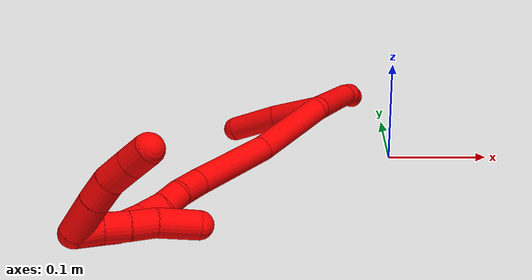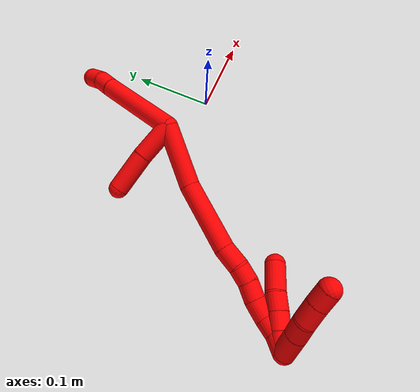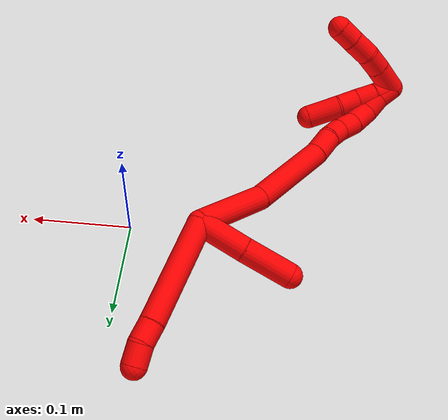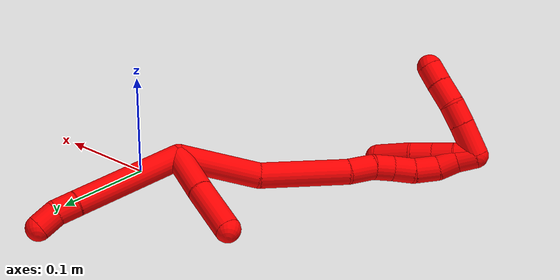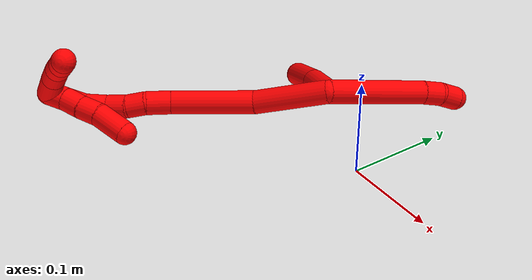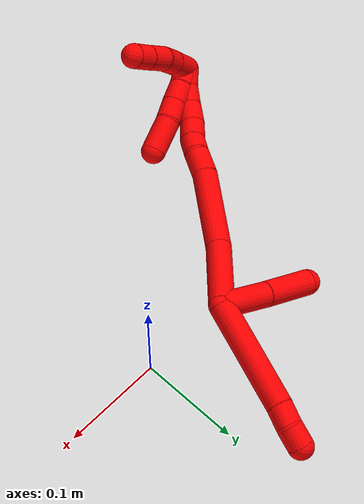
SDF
<sdf version="1.7">
 <world name="default">
  <model name="2">
   <static>0</static>
   <link name="2">
    <collision name="collision-cylinder-e_1_2_8">
     <pose>-0.000325 0.046151 0.028275 -1.02111 -0.006 0.003361</pose>
     <geometry><cylinder><radius>0.0125</radius><length>0.108249</length></cylinder></geometry>
     <surface>
      <friction><ode><mu>1.16</mu><mu2>1.16</mu2><slip1>0</slip1><slip2>0</slip2></ode></friction>
      <contact><ode><kp>1e+06</kp><kd>1</kd><max_vel>0</max_vel><min_depth>0.001</min_depth></ode></contact>
     </surface>
    </collision>
    <visual name="visual-cylinder-e_1_2_8">
     <pose>-0.000325 0.046151 0.028275 -1.02111 -0.006 0.003361</pose>
     <geometry><cylinder><radius>0.0125</radius><length>0.108249</length></cylinder></geometry>
     <material><ambient>1 0 0 1</ambient></material>
    </visual>
    <collision name="collision-cylinder-e_2_8_9">
     <pose>-0.001404 0.101417 0.061546 -1.06952 -0.072499 0.042956</pose>
     <geometry><cylinder><radius>0.0125</radius><length>0.020844</length></cylinder></geometry>
     <surface>
      <friction><ode><mu>1.16</mu><mu2>1.16</mu2><slip1>0</slip1><slip2>0</slip2></ode></friction>
      <contact><ode><kp>1e+06</kp><kd>1</kd><max_vel>0</max_vel><min_depth>0.001</min_depth></ode></contact>
     </surface>
    </collision>
    <visual name="visual-cylinder-e_2_8_9">
     <pose>-0.001404 0.101417 0.061546 -1.06952 -0.072499 0.042956</pose>
     <geometry><cylinder><radius>0.0125</radius><length>0.020844</length></cylinder></geometry>
     <material><ambient>1 0 0 1</ambient></material>
    </visual>
    <collision name="collision-cylinder-e_3_9_6">
     <pose>-0.004724 0.118118 0.073261 -0.8458 -0.247849 0.112003</pose>
     <geometry><cylinder><radius>0.0125</radius><length>0.020906</length></cylinder></geometry>
     <surface>
      <friction><ode><mu>1.16</mu><mu2>1.16</mu2><slip1>0</slip1><slip2>0</slip2></ode></friction>
      <contact><ode><kp>1e+06</kp><kd>1</kd><max_vel>0</max_vel><min_depth>0.001</min_depth></ode></contact>
     </surface>
    </collision>
    <visual name="visual-cylinder-e_3_9_6">
     <pose>-0.004724 0.118118 0.073261 -0.8458 -0.247849 0.112003</pose>
     <geometry><cylinder><radius>0.0125</radius><length>0.020906</length></cylinder></geometry>
     <material><ambient>1 0 0 1</ambient></material>
    </visual>
    <collision name="collision-cylinder-e_1_2_10">
     <pose>0.000898 -0.010677 0.022141 0.449307 0.036518 0.008346</pose>
     <geometry><cylinder><radius>0.0125</radius><length>0.049195</length></cylinder></geometry>
     <surface>
      <friction><ode><mu>1.16</mu><mu2>1.16</mu2><slip1>0</slip1><slip2>0</slip2></ode></friction>
      <contact><ode><kp>1e+06</kp><kd>1</kd><max_vel>0</max_vel><min_depth>0.001</min_depth></ode></contact>
     </surface>
    </collision>
    <visual name="visual-cylinder-e_1_2_10">
     <pose>0.000898 -0.010677 0.022141 0.449307 0.036518 0.008346</pose>
     <geometry><cylinder><radius>0.0125</radius><length>0.049195</length></cylinder></geometry>
     <material><ambient>1 0 0 1</ambient></material>
    </visual>
    <collision name="collision-cylinder-e_2_10_5">
     <pose>0.001025 -0.033705 0.066466 0.508051 -0.030363 -0.007884</pose>
     <geometry><cylinder><radius>0.0125</radius><length>0.050805</length></cylinder></geometry>
     <surface>
      <friction><ode><mu>1.16</mu><mu2>1.16</mu2><slip1>0</slip1><slip2>0</slip2></ode></friction>
      <contact><ode><kp>1e+06</kp><kd>1</kd><max_vel>0</max_vel><min_depth>0.001</min_depth></ode></contact>
     </surface>
    </collision>
    <visual name="visual-cylinder-e_2_10_5">
     <pose>0.001025 -0.033705 0.066466 0.508051 -0.030363 -0.007884</pose>
     <geometry><cylinder><radius>0.0125</radius><length>0.050805</length></cylinder></geometry>
     <material><ambient>1 0 0 1</ambient></material>
    </visual>
    <collision name="collision-cylinder-e_1_2_11">
     <pose>-0.010078 -0.038384 0.002958 1.49387 -0.256033 -0.237243</pose>
     <geometry><cylinder><radius>0.0125</radius><length>0.07959</length></cylinder></geometry>
     <surface>
      <friction><ode><mu>1.16</mu><mu2>1.16</mu2><slip1>0</slip1><slip2>0</slip2></ode></friction>
      <contact><ode><kp>1e+06</kp><kd>1</kd><max_vel>0</max_vel><min_depth>0.001</min_depth></ode></contact>
     </surface>
    </collision>
    <visual name="visual-cylinder-e_1_2_11">
     <pose>-0.010078 -0.038384 0.002958 1.49387 -0.256033 -0.237243</pose>
     <geometry><cylinder><radius>0.0125</radius><length>0.07959</length></cylinder></geometry>
     <material><ambient>1 0 0 1</ambient></material>
    </visual>
    <collision name="collision-cylinder-e_2_11_12">
     <pose>-0.02379 -0.120197 0.000362 1.69801 -0.082824 -0.094076</pose>
     <geometry><cylinder><radius>0.0125</radius><length>0.087867</length></cylinder></geometry>
     <surface>
      <friction><ode><mu>1.16</mu><mu2>1.16</mu2><slip1>0</slip1><slip2>0</slip2></ode></friction>
      <contact><ode><kp>1e+06</kp><kd>1</kd><max_vel>0</max_vel><min_depth>0.001</min_depth></ode></contact>
     </surface>
    </collision>
    <visual name="visual-cylinder-e_2_11_12">
     <pose>-0.02379 -0.120197 0.000362 1.69801 -0.082824 -0.094076</pose>
     <geometry><cylinder><radius>0.0125</radius><length>0.087867</length></cylinder></geometry>
     <material><ambient>1 0 0 1</ambient></material>
    </visual>
    <collision name="collision-cylinder-e_3_12_13">
     <pose>-0.028466 -0.176146 -0.009202 1.88072 -0.079037 -0.108254</pose>
     <geometry><cylinder><radius>0.0125</radius><length>0.026374</length></cylinder></geometry>
     <surface>
      <friction><ode><mu>1.16</mu><mu2>1.16</mu2><slip1>0</slip1><slip2>0</slip2></ode></friction>
      <contact><ode><kp>1e+06</kp><kd>1</kd><max_vel>0</max_vel><min_depth>0.001</min_depth></ode></contact>
     </surface>
    </collision>
    <visual name="visual-cylinder-e_3_12_13">
     <pose>-0.028466 -0.176146 -0.009202 1.88072 -0.079037 -0.108254</pose>
     <geometry><cylinder><radius>0.0125</radius><length>0.026374</length></cylinder></geometry>
     <material><ambient>1 0 0 1</ambient></material>
    </visual>
    <collision name="collision-cylinder-e_4_13_14">
     <pose>-0.03204 -0.198285 -0.01451 1.70505 -0.255246 -0.291553</pose>
     <geometry><cylinder><radius>0.0125</radius><length>0.020065</length></cylinder></geometry>
     <surface>
      <friction><ode><mu>1.16</mu><mu2>1.16</mu2><slip1>0</slip1><slip2>0</slip2></ode></friction>
      <contact><ode><kp>1e+06</kp><kd>1</kd><max_vel>0</max_vel><min_depth>0.001</min_depth></ode></contact>
     </surface>
    </collision>
    <visual name="visual-cylinder-e_4_13_14">
     <pose>-0.03204 -0.198285 -0.01451 1.70505 -0.255246 -0.291553</pose>
     <geometry><cylinder><radius>0.0125</radius><length>0.020065</length></cylinder></geometry>
     <material><ambient>1 0 0 1</ambient></material>
    </visual>
    <collision name="collision-cylinder-e_5_14_15">
     <pose>-0.035959 -0.218724 -0.015374 1.53056 -0.127267 -0.122259</pose>
     <geometry><cylinder><radius>0.0125</radius><length>0.021832</length></cylinder></geometry>
     <surface>
      <friction><ode><mu>1.16</mu><mu2>1.16</mu2><slip1>0</slip1><slip2>0</slip2></ode></friction>
      <contact><ode><kp>1e+06</kp><kd>1</kd><max_vel>0</max_vel><min_depth>0.001</min_depth></ode></contact>
     </surface>
    </collision>
    <visual name="visual-cylinder-e_5_14_15">
     <pose>-0.035959 -0.218724 -0.015374 1.53056 -0.127267 -0.122259</pose>
     <geometry><cylinder><radius>0.0125</radius><length>0.021832</length></cylinder></geometry>
     <material><ambient>1 0 0 1</ambient></material>
    </visual>
    <collision name="collision-cylinder-e_6_15_16">
     <pose>-0.037527 -0.241466 -0.016911 1.73476 -0.015134 -0.017844</pose>
     <geometry><cylinder><radius>0.0125</radius><length>0.024171</length></cylinder></geometry>
     <surface>
      <friction><ode><mu>1.16</mu><mu2>1.16</mu2><slip1>0</slip1><slip2>0</slip2></ode></friction>
      <contact><ode><kp>1e+06</kp><kd>1</kd><max_vel>0</max_vel><min_depth>0.001</min_depth></ode></contact>
     </surface>
    </collision>
    <visual name="visual-cylinder-e_6_15_16">
     <pose>-0.037527 -0.241466 -0.016911 1.73476 -0.015134 -0.017844</pose>
     <geometry><cylinder><radius>0.0125</radius><length>0.024171</length></cylinder></geometry>
     <material><ambient>1 0 0 1</ambient></material>
    </visual>
    <collision name="collision-cylinder-e_7_16_17">
     <pose>-0.035011 -0.26263 -0.021712 1.8678 0.272289 0.366233</pose>
     <geometry><cylinder><radius>0.0125</radius><length>0.020071</length></cylinder></geometry>
     <surface>
      <friction><ode><mu>1.16</mu><mu2>1.16</mu2><slip1>0</slip1><slip2>0</slip2></ode></friction>
      <contact><ode><kp>1e+06</kp><kd>1</kd><max_vel>0</max_vel><min_depth>0.001</min_depth></ode></contact>
     </surface>
    </collision>
    <visual name="visual-cylinder-e_7_16_17">
     <pose>-0.035011 -0.26263 -0.021712 1.8678 0.272289 0.366233</pose>
     <geometry><cylinder><radius>0.0125</radius><length>0.020071</length></cylinder></geometry>
     <material><ambient>1 0 0 1</ambient></material>
    </visual>
    <collision name="collision-cylinder-e_8_17_1">
     <pose>-0.029745 -0.281528 -0.025232 1.64219 0.259224 0.278185</pose>
     <geometry><cylinder><radius>0.0125</radius><length>0.02003</length></cylinder></geometry>
     <surface>
      <friction><ode><mu>1.16</mu><mu2>1.16</mu2><slip1>0</slip1><slip2>0</slip2></ode></friction>
      <contact><ode><kp>1e+06</kp><kd>1</kd><max_vel>0</max_vel><min_depth>0.001</min_depth></ode></contact>
     </surface>
    </collision>
    <visual name="visual-cylinder-e_8_17_1">
     <pose>-0.029745 -0.281528 -0.025232 1.64219 0.259224 0.278185</pose>
     <geometry><cylinder><radius>0.0125</radius><length>0.02003</length></cylinder></geometry>
     <material><ambient>1 0 0 1</ambient></material>
    </visual>
    <collision name="collision-cylinder-e_1_1_18">
     <pose>-0.017063 -0.284317 -0.037611 -2.61044 0.641069 -1.76877</pose>
     <geometry><cylinder><radius>0.0125</radius><length>0.033829</length></cylinder></geometry>
     <surface>
      <friction><ode><mu>1.16</mu><mu2>1.16</mu2><slip1>0</slip1><slip2>0</slip2></ode></friction>
      <contact><ode><kp>1e+06</kp><kd>1</kd><max_vel>0</max_vel><min_depth>0.001</min_depth></ode></contact>
     </surface>
    </collision>
    <visual name="visual-cylinder-e_1_1_18">
     <pose>-0.017063 -0.284317 -0.037611 -2.61044 0.641069 -1.76877</pose>
     <geometry><cylinder><radius>0.0125</radius><length>0.033829</length></cylinder></geometry>
     <material><ambient>1 0 0 1</ambient></material>
    </visual>
    <collision name="collision-cylinder-e_2_18_19">
     <pose>-0.00072 -0.272632 -0.056892 -2.5761 0.605587 -1.64331</pose>
     <geometry><cylinder><radius>0.0125</radius><length>0.021877</length></cylinder></geometry>
     <surface>
      <friction><ode><mu>1.16</mu><mu2>1.16</mu2><slip1>0</slip1><slip2>0</slip2></ode></friction>
      <contact><ode><kp>1e+06</kp><kd>1</kd><max_vel>0</max_vel><min_depth>0.001</min_depth></ode></contact>
     </surface>
    </collision>
    <visual name="visual-cylinder-e_2_18_19">
     <pose>-0.00072 -0.272632 -0.056892 -2.5761 0.605587 -1.64331</pose>
     <geometry><cylinder><radius>0.0125</radius><length>0.021877</length></cylinder></geometry>
     <material><ambient>1 0 0 1</ambient></material>
    </visual>
    <collision name="collision-cylinder-e_3_19_20">
     <pose>0.009914 -0.26217 -0.074272 -2.61858 0.371946 -1.22548</pose>
     <geometry><cylinder><radius>0.0125</radius><length>0.024253</length></cylinder></geometry>
     <surface>
      <friction><ode><mu>1.16</mu><mu2>1.16</mu2><slip1>0</slip1><slip2>0</slip2></ode></friction>
      <contact><ode><kp>1e+06</kp><kd>1</kd><max_vel>0</max_vel><min_depth>0.001</min_depth></ode></contact>
     </surface>
    </collision>
    <visual name="visual-cylinder-e_3_19_20">
     <pose>0.009914 -0.26217 -0.074272 -2.61858 0.371946 -1.22548</pose>
     <geometry><cylinder><radius>0.0125</radius><length>0.024253</length></cylinder></geometry>
     <material><ambient>1 0 0 1</ambient></material>
    </visual>
    <collision name="collision-cylinder-e_4_20_4">
     <pose>0.017813 -0.252217 -0.092404 -2.66477 0.356012 -1.27448</pose>
     <geometry><cylinder><radius>0.0125</radius><length>0.020041</length></cylinder></geometry>
     <surface>
      <friction><ode><mu>1.16</mu><mu2>1.16</mu2><slip1>0</slip1><slip2>0</slip2></ode></friction>
      <contact><ode><kp>1e+06</kp><kd>1</kd><max_vel>0</max_vel><min_depth>0.001</min_depth></ode></contact>
     </surface>
    </collision>
    <visual name="visual-cylinder-e_4_20_4">
     <pose>0.017813 -0.252217 -0.092404 -2.66477 0.356012 -1.27448</pose>
     <geometry><cylinder><radius>0.0125</radius><length>0.020041</length></cylinder></geometry>
     <material><ambient>1 0 0 1</ambient></material>
    </visual>
    <collision name="collision-cylinder-e_1_1_21">
     <pose>-0.029084 -0.280851 -0.02779 -1.74965 -0.179519 0.214634</pose>
     <geometry><cylinder><radius>0.0125</radius><length>0.021343</length></cylinder></geometry>
     <surface>
      <friction><ode><mu>1.16</mu><mu2>1.16</mu2><slip1>0</slip1><slip2>0</slip2></ode></friction>
      <contact><ode><kp>1e+06</kp><kd>1</kd><max_vel>0</max_vel><min_depth>0.001</min_depth></ode></contact>
     </surface>
    </collision>
    <visual name="visual-cylinder-e_1_1_21">
     <pose>-0.029084 -0.280851 -0.02779 -1.74965 -0.179519 0.214634</pose>
     <geometry><cylinder><radius>0.0125</radius><length>0.021343</length></cylinder></geometry>
     <material><ambient>1 0 0 1</ambient></material>
    </visual>
    <collision name="collision-cylinder-e_2_21_22">
     <pose>-0.033873 -0.260736 -0.032362 -1.84047 -0.276827 0.362056</pose>
     <geometry><cylinder><radius>0.0125</radius><length>0.021103</length></cylinder></geometry>
     <surface>
      <friction><ode><mu>1.16</mu><mu2>1.16</mu2><slip1>0</slip1><slip2>0</slip2></ode></friction>
      <contact><ode><kp>1e+06</kp><kd>1</kd><max_vel>0</max_vel><min_depth>0.001</min_depth></ode></contact>
     </surface>
    </collision>
    <visual name="visual-cylinder-e_2_21_22">
     <pose>-0.033873 -0.260736 -0.032362 -1.84047 -0.276827 0.362056</pose>
     <geometry><cylinder><radius>0.0125</radius><length>0.021103</length></cylinder></geometry>
     <material><ambient>1 0 0 1</ambient></material>
    </visual>
    <collision name="collision-cylinder-e_3_22_23">
     <pose>-0.039095 -0.240558 -0.037445 -1.79575 -0.21584 0.270209</pose>
     <geometry><cylinder><radius>0.0125</radius><length>0.021835</length></cylinder></geometry>
     <surface>
      <friction><ode><mu>1.16</mu><mu2>1.16</mu2><slip1>0</slip1><slip2>0</slip2></ode></friction>
      <contact><ode><kp>1e+06</kp><kd>1</kd><max_vel>0</max_vel><min_depth>0.001</min_depth></ode></contact>
     </surface>
    </collision>
    <visual name="visual-cylinder-e_3_22_23">
     <pose>-0.039095 -0.240558 -0.037445 -1.79575 -0.21584 0.270209</pose>
     <geometry><cylinder><radius>0.0125</radius><length>0.021835</length></cylinder></geometry>
     <material><ambient>1 0 0 1</ambient></material>
    </visual>
    <collision name="collision-cylinder-e_4_23_3">
     <pose>-0.04834 -0.214445 -0.044744 -1.87421 -0.397121 0.534571</pose>
     <geometry><cylinder><radius>0.0125</radius><length>0.035719</length></cylinder></geometry>
     <surface>
      <friction><ode><mu>1.16</mu><mu2>1.16</mu2><slip1>0</slip1><slip2>0</slip2></ode></friction>
      <contact><ode><kp>1e+06</kp><kd>1</kd><max_vel>0</max_vel><min_depth>0.001</min_depth></ode></contact>
     </surface>
    </collision>
    <visual name="visual-cylinder-e_4_23_3">
     <pose>-0.04834 -0.214445 -0.044744 -1.87421 -0.397121 0.534571</pose>
     <geometry><cylinder><radius>0.0125</radius><length>0.035719</length></cylinder></geometry>
     <material><ambient>1 0 0 1</ambient></material>
    </visual>
    <collision name="collision-sphere-3">
     <pose>-0.055248 -0.198727 -0.049665 0 -0 0</pose>
     <geometry><sphere><radius>0.0125</radius></sphere></geometry>
     <surface>
      <friction><ode><mu>1.16</mu><mu2>1.16</mu2><slip1>0</slip1><slip2>0</slip2></ode></friction>
      <contact><ode><kp>1e+06</kp><kd>1</kd><max_vel>0</max_vel><min_depth>0.001</min_depth></ode></contact>
     </surface>
    </collision>
    <visual name="visual-sphere-3">
     <pose>-0.055248 -0.198727 -0.049665 0 -0 0</pose>
     <geometry><sphere><radius>0.0125</radius></sphere></geometry>
     <material><ambient>1 0 0 1</ambient></material>
    </visual>
    <collision name="collision-sphere-23">
     <pose>-0.041433 -0.230162 -0.039824 0 -0 0</pose>
     <geometry><sphere><radius>0.0125</radius></sphere></geometry>
     <surface>
      <friction><ode><mu>1.16</mu><mu2>1.16</mu2><slip1>0</slip1><slip2>0</slip2></ode></friction>
      <contact><ode><kp>1e+06</kp><kd>1</kd><max_vel>0</max_vel><min_depth>0.001</min_depth></ode></contact>
     </surface>
    </collision>
    <visual name="visual-sphere-23">
     <pose>-0.041433 -0.230162 -0.039824 0 -0 0</pose>
     <geometry><sphere><radius>0.0125</radius></sphere></geometry>
     <material><ambient>1 0 0 1</ambient></material>
    </visual>
    <collision name="collision-sphere-22">
     <pose>-0.036757 -0.250953 -0.035066 0 -0 0</pose>
     <geometry><sphere><radius>0.0125</radius></sphere></geometry>
     <surface>
      <friction><ode><mu>1.16</mu><mu2>1.16</mu2><slip1>0</slip1><slip2>0</slip2></ode></friction>
      <contact><ode><kp>1e+06</kp><kd>1</kd><max_vel>0</max_vel><min_depth>0.001</min_depth></ode></contact>
     </surface>
    </collision>
    <visual name="visual-sphere-22">
     <pose>-0.036757 -0.250953 -0.035066 0 -0 0</pose>
     <geometry><sphere><radius>0.0125</radius></sphere></geometry>
     <material><ambient>1 0 0 1</ambient></material>
    </visual>
    <collision name="collision-sphere-21">
     <pose>-0.030989 -0.270519 -0.029658 0 -0 0</pose>
     <geometry><sphere><radius>0.0125</radius></sphere></geometry>
     <surface>
      <friction><ode><mu>1.16</mu><mu2>1.16</mu2><slip1>0</slip1><slip2>0</slip2></ode></friction>
      <contact><ode><kp>1e+06</kp><kd>1</kd><max_vel>0</max_vel><min_depth>0.001</min_depth></ode></contact>
     </surface>
    </collision>
    <visual name="visual-sphere-21">
     <pose>-0.030989 -0.270519 -0.029658 0 -0 0</pose>
     <geometry><sphere><radius>0.0125</radius></sphere></geometry>
     <material><ambient>1 0 0 1</ambient></material>
    </visual>
    <collision name="collision-sphere-4">
     <pose>0.021306 -0.247906 -0.100749 0 -0 0</pose>
     <geometry><sphere><radius>0.0125</radius></sphere></geometry>
     <surface>
      <friction><ode><mu>1.16</mu><mu2>1.16</mu2><slip1>0</slip1><slip2>0</slip2></ode></friction>
      <contact><ode><kp>1e+06</kp><kd>1</kd><max_vel>0</max_vel><min_depth>0.001</min_depth></ode></contact>
     </surface>
    </collision>
    <visual name="visual-sphere-4">
     <pose>0.021306 -0.247906 -0.100749 0 -0 0</pose>
     <geometry><sphere><radius>0.0125</radius></sphere></geometry>
     <material><ambient>1 0 0 1</ambient></material>
    </visual>
    <collision name="collision-sphere-20">
     <pose>0.014321 -0.256527 -0.08406 0 -0 0</pose>
     <geometry><sphere><radius>0.0125</radius></sphere></geometry>
     <surface>
      <friction><ode><mu>1.16</mu><mu2>1.16</mu2><slip1>0</slip1><slip2>0</slip2></ode></friction>
      <contact><ode><kp>1e+06</kp><kd>1</kd><max_vel>0</max_vel><min_depth>0.001</min_depth></ode></contact>
     </surface>
    </collision>
    <visual name="visual-sphere-20">
     <pose>0.014321 -0.256527 -0.08406 0 -0 0</pose>
     <geometry><sphere><radius>0.0125</radius></sphere></geometry>
     <material><ambient>1 0 0 1</ambient></material>
    </visual>
    <collision name="collision-sphere-5">
     <pose>0.000254 -0.046057 0.08865 0 -0 0</pose>
     <geometry><sphere><radius>0.0125</radius></sphere></geometry>
     <surface>
      <friction><ode><mu>1.16</mu><mu2>1.16</mu2><slip1>0</slip1><slip2>0</slip2></ode></friction>
      <contact><ode><kp>1e+06</kp><kd>1</kd><max_vel>0</max_vel><min_depth>0.001</min_depth></ode></contact>
     </surface>
    </collision>
    <visual name="visual-sphere-5">
     <pose>0.000254 -0.046057 0.08865 0 -0 0</pose>
     <geometry><sphere><radius>0.0125</radius></sphere></geometry>
     <material><ambient>1 0 0 1</ambient></material>
    </visual>
    <collision name="collision-sphere-10">
     <pose>0.001796 -0.021353 0.044283 0 -0 0</pose>
     <geometry><sphere><radius>0.0125</radius></sphere></geometry>
     <surface>
      <friction><ode><mu>1.16</mu><mu2>1.16</mu2><slip1>0</slip1><slip2>0</slip2></ode></friction>
      <contact><ode><kp>1e+06</kp><kd>1</kd><max_vel>0</max_vel><min_depth>0.001</min_depth></ode></contact>
     </surface>
    </collision>
    <visual name="visual-sphere-10">
     <pose>0.001796 -0.021353 0.044283 0 -0 0</pose>
     <geometry><sphere><radius>0.0125</radius></sphere></geometry>
     <material><ambient>1 0 0 1</ambient></material>
    </visual>
    <collision name="collision-sphere-6">
     <pose>-0.007288 0.125703 0.079981 0 -0 0</pose>
     <geometry><sphere><radius>0.0125</radius></sphere></geometry>
     <surface>
      <friction><ode><mu>1.16</mu><mu2>1.16</mu2><slip1>0</slip1><slip2>0</slip2></ode></friction>
      <contact><ode><kp>1e+06</kp><kd>1</kd><max_vel>0</max_vel><min_depth>0.001</min_depth></ode></contact>
     </surface>
    </collision>
    <visual name="visual-sphere-6">
     <pose>-0.007288 0.125703 0.079981 0 -0 0</pose>
     <geometry><sphere><radius>0.0125</radius></sphere></geometry>
     <material><ambient>1 0 0 1</ambient></material>
    </visual>
    <collision name="collision-sphere-9">
     <pose>-0.002159 0.110533 0.066541 0 -0 0</pose>
     <geometry><sphere><radius>0.0125</radius></sphere></geometry>
     <surface>
      <friction><ode><mu>1.16</mu><mu2>1.16</mu2><slip1>0</slip1><slip2>0</slip2></ode></friction>
      <contact><ode><kp>1e+06</kp><kd>1</kd><max_vel>0</max_vel><min_depth>0.001</min_depth></ode></contact>
     </surface>
    </collision>
    <visual name="visual-sphere-9">
     <pose>-0.002159 0.110533 0.066541 0 -0 0</pose>
     <geometry><sphere><radius>0.0125</radius></sphere></geometry>
     <material><ambient>1 0 0 1</ambient></material>
    </visual>
    <collision name="collision-sphere-2">
     <geometry><sphere><radius>0.0125</radius></sphere></geometry>
     <surface>
      <friction><ode><mu>1.16</mu><mu2>1.16</mu2><slip1>0</slip1><slip2>0</slip2></ode></friction>
      <contact><ode><kp>1e+06</kp><kd>1</kd><max_vel>0</max_vel><min_depth>0.001</min_depth></ode></contact>
     </surface>
    </collision>
    <visual name="visual-sphere-2">
     <geometry><sphere><radius>0.0125</radius></sphere></geometry>
     <material><ambient>1 0 0 1</ambient></material>
    </visual>
    <collision name="collision-sphere-19">
     <pose>0.005506 -0.267813 -0.064485 0 -0 0</pose>
     <geometry><sphere><radius>0.0125</radius></sphere></geometry>
     <surface>
      <friction><ode><mu>1.16</mu><mu2>1.16</mu2><slip1>0</slip1><slip2>0</slip2></ode></friction>
      <contact><ode><kp>1e+06</kp><kd>1</kd><max_vel>0</max_vel><min_depth>0.001</min_depth></ode></contact>
     </surface>
    </collision>
    <visual name="visual-sphere-19">
     <pose>0.005506 -0.267813 -0.064485 0 -0 0</pose>
     <geometry><sphere><radius>0.0125</radius></sphere></geometry>
     <material><ambient>1 0 0 1</ambient></material>
    </visual>
    <collision name="collision-sphere-8">
     <pose>-0.00065 0.092301 0.056551 0 -0 0</pose>
     <geometry><sphere><radius>0.0125</radius></sphere></geometry>
     <surface>
      <friction><ode><mu>1.16</mu><mu2>1.16</mu2><slip1>0</slip1><slip2>0</slip2></ode></friction>
      <contact><ode><kp>1e+06</kp><kd>1</kd><max_vel>0</max_vel><min_depth>0.001</min_depth></ode></contact>
     </surface>
    </collision>
    <visual name="visual-sphere-8">
     <pose>-0.00065 0.092301 0.056551 0 -0 0</pose>
     <geometry><sphere><radius>0.0125</radius></sphere></geometry>
     <material><ambient>1 0 0 1</ambient></material>
    </visual>
    <collision name="collision-sphere-11">
     <pose>-0.020156 -0.076768 0.005917 0 -0 0</pose>
     <geometry><sphere><radius>0.0125</radius></sphere></geometry>
     <surface>
      <friction><ode><mu>1.16</mu><mu2>1.16</mu2><slip1>0</slip1><slip2>0</slip2></ode></friction>
      <contact><ode><kp>1e+06</kp><kd>1</kd><max_vel>0</max_vel><min_depth>0.001</min_depth></ode></contact>
     </surface>
    </collision>
    <visual name="visual-sphere-11">
     <pose>-0.020156 -0.076768 0.005917 0 -0 0</pose>
     <geometry><sphere><radius>0.0125</radius></sphere></geometry>
     <material><ambient>1 0 0 1</ambient></material>
    </visual>
    <collision name="collision-sphere-12">
     <pose>-0.027425 -0.163626 -0.005193 0 -0 0</pose>
     <geometry><sphere><radius>0.0125</radius></sphere></geometry>
     <surface>
      <friction><ode><mu>1.16</mu><mu2>1.16</mu2><slip1>0</slip1><slip2>0</slip2></ode></friction>
      <contact><ode><kp>1e+06</kp><kd>1</kd><max_vel>0</max_vel><min_depth>0.001</min_depth></ode></contact>
     </surface>
    </collision>
    <visual name="visual-sphere-12">
     <pose>-0.027425 -0.163626 -0.005193 0 -0 0</pose>
     <geometry><sphere><radius>0.0125</radius></sphere></geometry>
     <material><ambient>1 0 0 1</ambient></material>
    </visual>
    <collision name="collision-sphere-13">
     <pose>-0.029507 -0.188665 -0.013211 0 -0 0</pose>
     <geometry><sphere><radius>0.0125</radius></sphere></geometry>
     <surface>
      <friction><ode><mu>1.16</mu><mu2>1.16</mu2><slip1>0</slip1><slip2>0</slip2></ode></friction>
      <contact><ode><kp>1e+06</kp><kd>1</kd><max_vel>0</max_vel><min_depth>0.001</min_depth></ode></contact>
     </surface>
    </collision>
    <visual name="visual-sphere-13">
     <pose>-0.029507 -0.188665 -0.013211 0 -0 0</pose>
     <geometry><sphere><radius>0.0125</radius></sphere></geometry>
     <material><ambient>1 0 0 1</ambient></material>
    </visual>
    <collision name="collision-sphere-14">
     <pose>-0.034573 -0.207905 -0.01581 0 -0 0</pose>
     <geometry><sphere><radius>0.0125</radius></sphere></geometry>
     <surface>
      <friction><ode><mu>1.16</mu><mu2>1.16</mu2><slip1>0</slip1><slip2>0</slip2></ode></friction>
      <contact><ode><kp>1e+06</kp><kd>1</kd><max_vel>0</max_vel><min_depth>0.001</min_depth></ode></contact>
     </surface>
    </collision>
    <visual name="visual-sphere-14">
     <pose>-0.034573 -0.207905 -0.01581 0 -0 0</pose>
     <geometry><sphere><radius>0.0125</radius></sphere></geometry>
     <material><ambient>1 0 0 1</ambient></material>
    </visual>
    <collision name="collision-sphere-15">
     <pose>-0.037344 -0.229543 -0.014939 0 -0 0</pose>
     <geometry><sphere><radius>0.0125</radius></sphere></geometry>
     <surface>
      <friction><ode><mu>1.16</mu><mu2>1.16</mu2><slip1>0</slip1><slip2>0</slip2></ode></friction>
      <contact><ode><kp>1e+06</kp><kd>1</kd><max_vel>0</max_vel><min_depth>0.001</min_depth></ode></contact>
     </surface>
    </collision>
    <visual name="visual-sphere-15">
     <pose>-0.037344 -0.229543 -0.014939 0 -0 0</pose>
     <geometry><sphere><radius>0.0125</radius></sphere></geometry>
     <material><ambient>1 0 0 1</ambient></material>
    </visual>
    <collision name="collision-sphere-16">
     <pose>-0.03771 -0.253388 -0.018884 0 -0 0</pose>
     <geometry><sphere><radius>0.0125</radius></sphere></geometry>
     <surface>
      <friction><ode><mu>1.16</mu><mu2>1.16</mu2><slip1>0</slip1><slip2>0</slip2></ode></friction>
      <contact><ode><kp>1e+06</kp><kd>1</kd><max_vel>0</max_vel><min_depth>0.001</min_depth></ode></contact>
     </surface>
    </collision>
    <visual name="visual-sphere-16">
     <pose>-0.03771 -0.253388 -0.018884 0 -0 0</pose>
     <geometry><sphere><radius>0.0125</radius></sphere></geometry>
     <material><ambient>1 0 0 1</ambient></material>
    </visual>
    <collision name="collision-sphere-17">
     <pose>-0.032312 -0.271873 -0.024541 0 -0 0</pose>
     <geometry><sphere><radius>0.0125</radius></sphere></geometry>
     <surface>
      <friction><ode><mu>1.16</mu><mu2>1.16</mu2><slip1>0</slip1><slip2>0</slip2></ode></friction>
      <contact><ode><kp>1e+06</kp><kd>1</kd><max_vel>0</max_vel><min_depth>0.001</min_depth></ode></contact>
     </surface>
    </collision>
    <visual name="visual-sphere-17">
     <pose>-0.032312 -0.271873 -0.024541 0 -0 0</pose>
     <geometry><sphere><radius>0.0125</radius></sphere></geometry>
     <material><ambient>1 0 0 1</ambient></material>
    </visual>
    <collision name="collision-sphere-1">
     <pose>-0.027178 -0.291184 -0.025922 0 -0 0</pose>
     <geometry><sphere><radius>0.0125</radius></sphere></geometry>
     <surface>
      <friction><ode><mu>1.16</mu><mu2>1.16</mu2><slip1>0</slip1><slip2>0</slip2></ode></friction>
      <contact><ode><kp>1e+06</kp><kd>1</kd><max_vel>0</max_vel><min_depth>0.001</min_depth></ode></contact>
     </surface>
    </collision>
    <visual name="visual-sphere-1">
     <pose>-0.027178 -0.291184 -0.025922 0 -0 0</pose>
     <geometry><sphere><radius>0.0125</radius></sphere></geometry>
     <material><ambient>1 0 0 1</ambient></material>
    </visual>
    <collision name="collision-sphere-18">
     <pose>-0.006947 -0.277451 -0.049299 0 -0 0</pose>
     <geometry><sphere><radius>0.0125</radius></sphere></geometry>
     <surface>
      <friction><ode><mu>1.16</mu><mu2>1.16</mu2><slip1>0</slip1><slip2>0</slip2></ode></friction>
      <contact><ode><kp>1e+06</kp><kd>1</kd><max_vel>0</max_vel><min_depth>0.001</min_depth></ode></contact>
     </surface>
    </collision>
    <visual name="visual-sphere-18">
     <pose>-0.006947 -0.277451 -0.049299 0 -0 0</pose>
     <geometry><sphere><radius>0.0125</radius></sphere></geometry>
     <material><ambient>1 0 0 1</ambient></material>
    </visual>
    <inertial>
     <pose>-0.015007 -0.117101 -0.001964 0 -0 0</pose>
     <mass>0.75</mass>
     <inertia><ixx>0.000238</ixx><ixy>0</ixy><ixz>0</ixz><iyy>5.4e-05</iyy><iyz>0</iyz><izz>3.4e-05</izz></inertia>
    </inertial>
   </link>
   <pose>-0.074744 0.020034 0.046589 3.10194 -1.1805 2.36632</pose>
  </model>
 </world>
</sdf>
